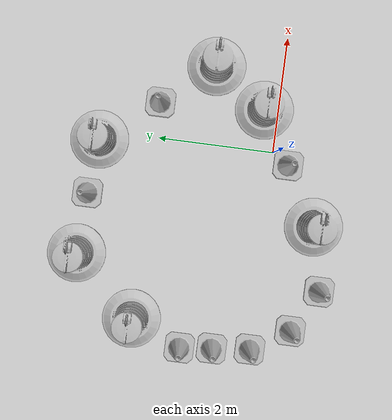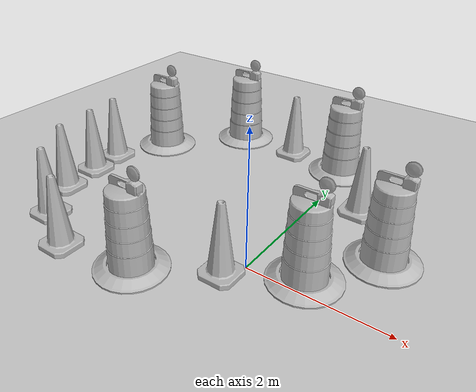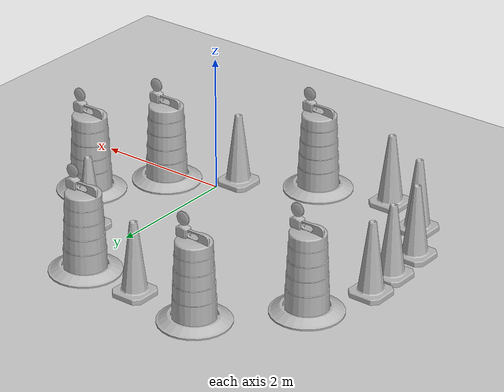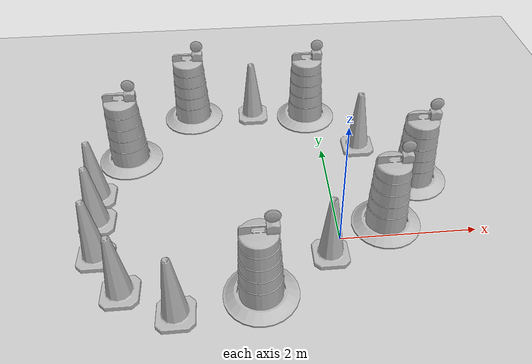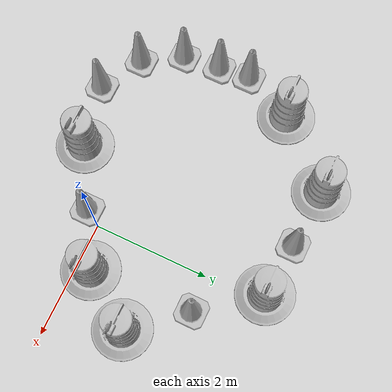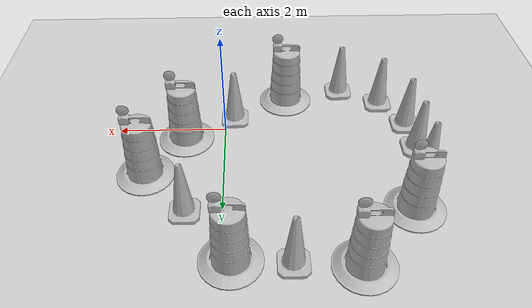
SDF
<sdf version="1.7">
 <world name="default">
  <light name="sun" type="directional">
   <pose>0 0 10 0 -0 0</pose>
   <diffuse>0.8 0.8 0.8 1</diffuse>
   <specular>0.2 0.2 0.2 1</specular>
   <attenuation>
    <range>1000</range>
    <constant>0.9</constant>
    <linear>0.01</linear>
    <quadratic>0.001</quadratic>
   </attenuation>
   <direction>-0.5 0.1 -0.9</direction>
   <spot><inner_angle>0</inner_angle><outer_angle>0</outer_angle><falloff>0</falloff></spot>
  </light>
  <model name="ground_plane">
   <static>1</static>
   <link name="link">
    <collision name="collision">
     <geometry><plane><normal>0 0 1</normal><size>100 100</size></plane></geometry>
     <surface>
      <contact><collide_bitmask>65535</collide_bitmask></contact>
      <friction><ode><mu>100</mu><mu2>50</mu2></ode></friction>
     </surface>
    </collision>
    <visual name="visual">
     <cast_shadows>0</cast_shadows>
     <geometry><plane><normal>0 0 1</normal><size>100 100</size></plane></geometry>
     <material>
      <script><uri>file://media/materials/scripts/gazebo.material</uri><name>Gazebo/Grey</name></script>
     </material>
    </visual>
   </link>
  </model>
  <gravity>0 0 -9.8</gravity>
  <magnetic_field>6e-06 2.3e-05 -4.2e-05</magnetic_field>
  <atmosphere type="adiabatic"/>
  <physics type="ode">
   <max_step_size>0.001</max_step_size>
   <real_time_factor>1</real_time_factor>
   <real_time_update_rate>1000</real_time_update_rate>
  </physics>
  <scene><ambient>0.4 0.4 0.4 1</ambient><background>0.7 0.7 0.7 1</background><shadows>1</shadows></scene>
  <audio><device>default</device></audio>
  <spherical_coordinates>
   <surface_model>EARTH_WGS84</surface_model>
   <latitude_deg>0</latitude_deg>
   <longitude_deg>0</longitude_deg>
   <elevation>0</elevation>
   <heading_deg>0</heading_deg>
  </spherical_coordinates>
  <model name="Construction Barrel">
   <link name="link">
    <inertial>
     <pose>0 0 0.4 0 -0 0</pose>
     <mass>500</mass>
     <inertia><ixx>51.2096</ixx><iyy>51.2096</iyy><izz>25</izz><ixy>0</ixy><ixz>0</ixz><iyz>0</iyz></inertia>
    </inertial>
    <collision name="collision">
     <geometry><mesh><uri>model://construction_barrel/meshes/construction_barrel.dae</uri></mesh></geometry>
    </collision>
    <visual name="visual">
     <geometry><mesh><uri>model://construction_barrel/meshes/construction_barrel.dae</uri></mesh></geometry>
    </visual>
   </link>
   <pose>-0.154412 3.01471 -2e-06 1e-06 8e-06 -2.5e-05</pose>
  </model>
  <model name="Construction Barrel_0">
   <link name="link">
    <inertial>
     <pose>0 0 0.4 0 -0 0</pose>
     <mass>500</mass>
     <inertia><ixx>51.2096</ixx><iyy>51.2096</iyy><izz>25</izz><ixy>0</ixy><ixz>0</ixz><iyz>0</iyz></inertia>
    </inertial>
    <collision name="collision">
     <geometry><mesh><uri>model://construction_barrel/meshes/construction_barrel.dae</uri></mesh></geometry>
    </collision>
    <visual name="visual">
     <geometry><mesh><uri>model://construction_barrel/meshes/construction_barrel.dae</uri></mesh></geometry>
    </visual>
   </link>
   <pose>1.36384 1.16115 -1e-06 1e-06 -1e-06 -2.2e-05</pose>
  </model>
  <model name="Construction Cone">
   <link name="link">
    <collision name="collision">
     <geometry>
      <mesh><scale>10 10 10</scale><uri>model://construction_cone/meshes/construction_cone.dae</uri></mesh>
     </geometry>
    </collision>
    <visual name="visual">
     <geometry>
      <mesh><scale>10 10 10</scale><uri>model://construction_cone/meshes/construction_cone.dae</uri></mesh>
     </geometry>
    </visual>
    <inertial>
     <inertia><ixx>1</ixx><ixy>0</ixy><ixz>0</ixz><iyy>1</iyy><iyz>0</iyz><izz>1</izz></inertia>
     <mass>1</mass>
    </inertial>
   </link>
   <pose>-3.56029 1.17277 -1e-05 -1e-06 0 0</pose>
  </model>
  <model name="Construction Barrel_1">
   <link name="link">
    <inertial>
     <pose>0 0 0.4 0 -0 0</pose>
     <mass>500</mass>
     <inertia><ixx>51.2096</ixx><iyy>51.2096</iyy><izz>25</izz><ixy>0</ixy><ixz>0</ixz><iyz>0</iyz></inertia>
    </inertial>
    <collision name="collision">
     <geometry><mesh><uri>model://construction_barrel/meshes/construction_barrel.dae</uri></mesh></geometry>
    </collision>
    <visual name="visual">
     <geometry><mesh><uri>model://construction_barrel/meshes/construction_barrel.dae</uri></mesh></geometry>
    </visual>
   </link>
   <pose>-2.16249 3.15606 -2e-06 7e-06 -4e-06 -2.1e-05</pose>
  </model>
  <model name="Construction Cone_0">
   <link name="link">
    <collision name="collision">
     <geometry>
      <mesh><scale>10 10 10</scale><uri>model://construction_cone/meshes/construction_cone.dae</uri></mesh>
     </geometry>
    </collision>
    <visual name="visual">
     <geometry>
      <mesh><scale>10 10 10</scale><uri>model://construction_cone/meshes/construction_cone.dae</uri></mesh>
     </geometry>
    </visual>
    <inertial>
     <inertia><ixx>1</ixx><ixy>0</ixy><ixz>0</ixz><iyy>1</iyy><iyz>0</iyz><izz>1</izz></inertia>
     <mass>1</mass>
    </inertial>
   </link>
   <pose>-3.5037 0.616318 -0 0 -1e-06 0</pose>
  </model>
  <model name="Construction Cone_1">
   <link name="link">
    <collision name="collision">
     <geometry>
      <mesh><scale>10 10 10</scale><uri>model://construction_cone/meshes/construction_cone.dae</uri></mesh>
     </geometry>
    </collision>
    <visual name="visual">
     <geometry>
      <mesh><scale>10 10 10</scale><uri>model://construction_cone/meshes/construction_cone.dae</uri></mesh>
     </geometry>
    </visual>
    <inertial>
     <inertia><ixx>1</ixx><ixy>0</ixy><ixz>0</ixz><iyy>1</iyy><iyz>0</iyz><izz>1</izz></inertia>
     <mass>1</mass>
    </inertial>
   </link>
   <pose>-3.43367 -0.040741 -0 0 -1e-06 0</pose>
  </model>
  <model name="Construction Cone_2">
   <link name="link">
    <collision name="collision">
     <geometry>
      <mesh><scale>10 10 10</scale><uri>model://construction_cone/meshes/construction_cone.dae</uri></mesh>
     </geometry>
    </collision>
    <visual name="visual">
     <geometry>
      <mesh><scale>10 10 10</scale><uri>model://construction_cone/meshes/construction_cone.dae</uri></mesh>
     </geometry>
    </visual>
    <inertial>
     <inertia><ixx>1</ixx><ixy>0</ixy><ixz>0</ixz><iyy>1</iyy><iyz>0</iyz><izz>1</izz></inertia>
     <mass>1</mass>
    </inertial>
   </link>
   <pose>-3.02564 -0.696041 -0 -0 -0 -0</pose>
  </model>
  <model name="Construction Cone_3">
   <link name="link">
    <collision name="collision">
     <geometry>
      <mesh><scale>10 10 10</scale><uri>model://construction_cone/meshes/construction_cone.dae</uri></mesh>
     </geometry>
    </collision>
    <visual name="visual">
     <geometry>
      <mesh><scale>10 10 10</scale><uri>model://construction_cone/meshes/construction_cone.dae</uri></mesh>
     </geometry>
    </visual>
    <inertial>
     <inertia><ixx>1</ixx><ixy>0</ixy><ixz>0</ixz><iyy>1</iyy><iyz>0</iyz><izz>1</izz></inertia>
     <mass>1</mass>
    </inertial>
   </link>
   <pose>-2.28487 -1.10359 -0 0 -1e-06 0</pose>
  </model>
  <model name="Construction Cone_4">
   <link name="link">
    <collision name="collision">
     <geometry>
      <mesh><scale>10 10 10</scale><uri>model://construction_cone/meshes/construction_cone.dae</uri></mesh>
     </geometry>
    </collision>
    <visual name="visual">
     <geometry>
      <mesh><scale>10 10 10</scale><uri>model://construction_cone/meshes/construction_cone.dae</uri></mesh>
     </geometry>
    </visual>
    <inertial>
     <inertia><ixx>1</ixx><ixy>0</ixy><ixz>0</ixz><iyy>1</iyy><iyz>0</iyz><izz>1</izz></inertia>
     <mass>1</mass>
    </inertial>
   </link>
   <pose>0.617331 2.04577 -0 0 -1e-06 0</pose>
  </model>
  <model name="Construction Cone_5">
   <link name="link">
    <collision name="collision">
     <geometry>
      <mesh><scale>10 10 10</scale><uri>model://construction_cone/meshes/construction_cone.dae</uri></mesh>
     </geometry>
    </collision>
    <visual name="visual">
     <geometry>
      <mesh><scale>10 10 10</scale><uri>model://construction_cone/meshes/construction_cone.dae</uri></mesh>
     </geometry>
    </visual>
    <inertial>
     <inertia><ixx>1</ixx><ixy>0</ixy><ixz>0</ixz><iyy>1</iyy><iyz>0</iyz><izz>1</izz></inertia>
     <mass>1</mass>
    </inertial>
   </link>
   <pose>-1.09955 3.10147 -1e-05 -1e-06 0 0</pose>
  </model>
  <model name="Construction Cone_6">
   <link name="link">
    <collision name="collision">
     <geometry>
      <mesh><scale>10 10 10</scale><uri>model://construction_cone/meshes/construction_cone.dae</uri></mesh>
     </geometry>
    </collision>
    <visual name="visual">
     <geometry>
      <mesh><scale>10 10 10</scale><uri>model://construction_cone/meshes/construction_cone.dae</uri></mesh>
     </geometry>
    </visual>
    <inertial>
     <inertia><ixx>1</ixx><ixy>0</ixy><ixz>0</ixz><iyy>1</iyy><iyz>0</iyz><izz>1</izz></inertia>
     <mass>1</mass>
    </inertial>
   </link>
   <pose>-0.183104 -0.289828 -0 0 -1e-06 0</pose>
  </model>
  <model name="Construction Barrel_2">
   <link name="link">
    <inertial>
     <pose>0 0 0.4 0 -0 0</pose>
     <mass>500</mass>
     <inertia><ixx>51.2096</ixx><iyy>51.2096</iyy><izz>25</izz><ixy>0</ixy><ixz>0</ixz><iyz>0</iyz></inertia>
    </inertial>
    <collision name="collision">
     <geometry><mesh><uri>model://construction_barrel/meshes/construction_barrel.dae</uri></mesh></geometry>
    </collision>
    <visual name="visual">
     <geometry><mesh><uri>model://construction_barrel/meshes/construction_barrel.dae</uri></mesh></geometry>
    </visual>
   </link>
   <pose>-1.18632 -0.867539 -1e-06 4e-06 -1e-06 -7e-06</pose>
  </model>
  <model name="Construction Barrel_3">
   <link name="link">
    <inertial>
     <pose>0 0 0.4 0 -0 0</pose>
     <mass>500</mass>
     <inertia><ixx>51.2096</ixx><iyy>51.2096</iyy><izz>25</izz><ixy>0</ixy><ixz>0</ixz><iyz>0</iyz></inertia>
    </inertial>
    <collision name="collision">
     <geometry><mesh><uri>model://construction_barrel/meshes/construction_barrel.dae</uri></mesh></geometry>
    </collision>
    <visual name="visual">
     <geometry><mesh><uri>model://construction_barrel/meshes/construction_barrel.dae</uri></mesh></geometry>
    </visual>
   </link>
   <pose>-3.16708 2.06337 -2e-06 1e-06 8e-06 -6e-06</pose>
  </model>
  <model name="Construction Barrel_4">
   <link name="link">
    <inertial>
     <pose>0 0 0.4 0 -0 0</pose>
     <mass>500</mass>
     <inertia><ixx>51.2096</ixx><iyy>51.2096</iyy><izz>25</izz><ixy>0</ixy><ixz>0</ixz><iyz>0</iyz></inertia>
    </inertial>
    <collision name="collision">
     <geometry><mesh><uri>model://construction_barrel/meshes/construction_barrel.dae</uri></mesh></geometry>
    </collision>
    <visual name="visual">
     <geometry><mesh><uri>model://construction_barrel/meshes/construction_barrel.dae</uri></mesh></geometry>
    </visual>
   </link>
   <pose>0.71682 0.243243 -1e-06 -3e-06 -1e-06 -3e-06</pose>
  </model>
 </world>
</sdf>
